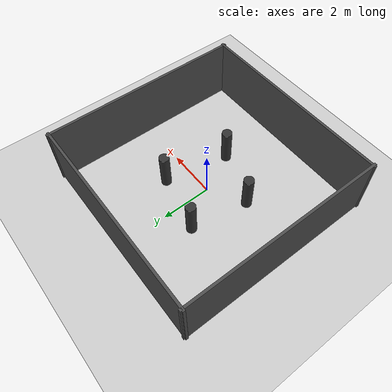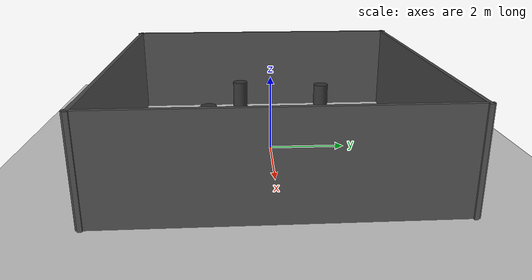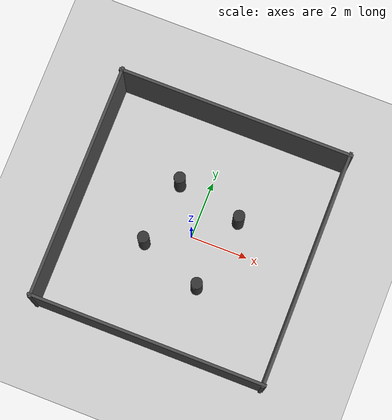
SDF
<?xml version="1.0" ?>
<sdf version="1.9">
  <world name="env1_4x4_circles">

    <physics name="1ms" type="ignored">
      <max_step_size>0.001</max_step_size>
      <real_time_factor>1.0</real_time_factor>
    </physics>

    <!-- Essential systems -->
    <plugin filename="gz-sim-physics-system" name="gz::sim::systems::Physics"/>
    <plugin filename="gz-sim-user-commands-system" name="gz::sim::systems::UserCommands"/>
    <plugin filename="gz-sim-scene-broadcaster-system" name="gz::sim::systems::SceneBroadcaster"/>
    <plugin filename="gz-sim-sensors-system" name="gz::sim::systems::Sensors">
      <render_engine>ogre2</render_engine>
    </plugin>

    <light type="directional" name="sun">
      <cast_shadows>true</cast_shadows>
      <pose>0 0 10 0 0 0</pose>
      <diffuse>0.8 0.8 0.8 1</diffuse>
      <specular>0.2 0.2 0.2 1</specular>
      <direction>-0.5 0.1 -0.9</direction>
    </light>

    <model name="ground_plane">
      <static>true</static>
      <link name="link">
        <collision name="collision">
          <geometry>
            <plane>
              <normal>0 0 1</normal>
              <size>100 100</size>
            </plane>
          </geometry>
        </collision>
        <visual name="visual">
          <geometry>
            <plane>
              <normal>0 0 1</normal>
              <size>100 100</size>
            </plane>
          </geometry>
          <material>
            <ambient>0.8 0.8 0.8 1</ambient>
            <diffuse>0.8 0.8 0.8 1</diffuse>
          </material>
        </visual>
      </link>
    </model>

    <!-- ========== BOUNDARY WALLS (4 × 4 m arena) ========== -->
    <!-- north -->
    <model name="wall_north">
      <static>true</static>
      <pose>0 4 1.25 0 0 0</pose>
      <link name="link">
        <collision name="collision">
          <geometry>
            <box>
              <size>8.2 0.1 2.5</size>
            </box>
          </geometry>
        </collision>
        <visual name="visual">
          <geometry>
            <box>
              <size>8.2 0.1 2.5</size>
            </box>
          </geometry>
          <material>
            <ambient>0.3 0.3 0.3 1</ambient>
          </material>
        </visual>
      </link>
    </model>

    <!-- south -->
    <model name="wall_south">
      <static>true</static>
      <pose>0 -4 1.25 0 0 0</pose>
      <link name="link">
        <collision name="collision">
          <geometry>
            <box>
              <size>8.2 0.1 2.5</size>
            </box>
          </geometry>
        </collision>
        <visual name="visual">
          <geometry>
            <box>
              <size>8.2 0.1 2.5</size>
            </box>
          </geometry>
          <material>
            <ambient>0.3 0.3 0.3 1</ambient>
          </material>
        </visual>
      </link>
    </model>

    <!-- east -->
    <model name="wall_east">
      <static>true</static>
      <pose>4 0 1.25 0 0 0</pose>
      <link name="link">
        <collision name="collision">
          <geometry>
            <box>
              <size>0.1 8.2 2.5</size>
            </box>
          </geometry>
        </collision>
        <visual name="visual">
          <geometry>
            <box>
              <size>0.1 8.2 2.5</size>
            </box>
          </geometry>
          <material>
            <ambient>0.3 0.3 0.3 1</ambient>
          </material>
        </visual>
      </link>
    </model>

    <!-- west -->
    <model name="wall_west">
      <static>true</static>
      <pose>-4 0 1.25 0 0 0</pose>
      <link name="link">
        <collision name="collision">
          <geometry>
            <box>
              <size>0.1 8.2 2.5</size>
            </box>
          </geometry>
        </collision>
        <visual name="visual">
          <geometry>
            <box>
              <size>0.1 8.2 2.5</size>
            </box>
          </geometry>
          <material>
            <ambient>0.3 0.3 0.3 1</ambient>
          </material>
        </visual>
      </link>
    </model>

    <!-- ========== 4 ASYMMETRIC, CLEAR-CORRIDOR PILLARS ========== -->
<!-- 1  top-left   (shifted right & down)   -->
<model name="pillar_1">
  <static>true</static>
  <pose>-1.0 1.5 0.75 0 0 0</pose>
  <link name="link">
    <collision name="collision"><geometry><cylinder><radius>0.20</radius><length>1.5</length></cylinder></geometry></collision>
    <visual    name="visual"   ><geometry><cylinder><radius>0.20</radius><length>1.5</length></cylinder></geometry>
               <material><ambient>0.2 0.2 0.2 1</ambient></material></visual>
  </link>
</model>

<!-- 2  top-right   (shifted left & down)   -->
<model name="pillar_2">
  <static>true</static>
  <pose> 1.3 1.0 0.75 0 0 0</pose>
  <link name="link">
    <collision name="collision"><geometry><cylinder><radius>0.20</radius><length>1.5</length></cylinder></geometry></collision>
    <visual    name="visual"   ><geometry><cylinder><radius>0.20</radius><length>1.5</length></cylinder></geometry>
               <material><ambient>0.2 0.2 0.2 1</ambient></material></visual>
  </link>
</model>

<!-- 3  bottom-left   (shifted right & up)   -->
<model name="pillar_3">
  <static>true</static>
  <pose>-1.4 -0.8 0.75 0 0 0</pose>
  <link name="link">
    <collision name="collision"><geometry><cylinder><radius>0.20</radius><length>1.5</length></cylinder></geometry></collision>
    <visual    name="visual"   ><geometry><cylinder><radius>0.20</radius><length>1.5</length></cylinder></geometry>
               <material><ambient>0.2 0.2 0.2 1</ambient></material></visual>
  </link>
</model>

<!-- 4  bottom-right   (shifted left & up)   -->
<model name="pillar_4">
  <static>true</static>
  <pose> 0.8 -1.6 0.75 0 0 0</pose>
  <link name="link">
    <collision name="collision"><geometry><cylinder><radius>0.20</radius><length>1.5</length></cylinder></geometry></collision>
    <visual    name="visual"   ><geometry><cylinder><radius>0.20</radius><length>1.5</length></cylinder></geometry>
               <material><ambient>0.2 0.2 0.2 1</ambient></material></visual>
  </link>
</model>
  </world>
</sdf>
